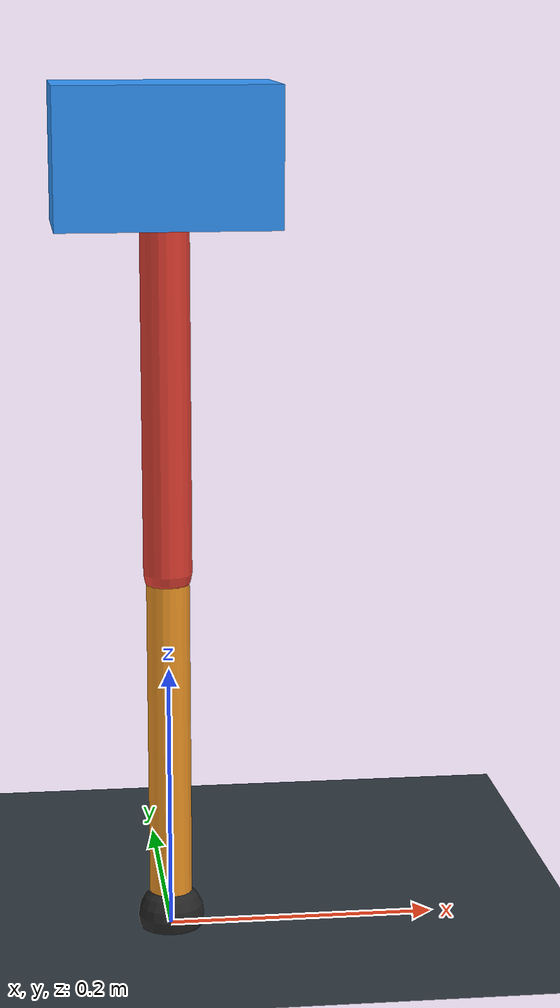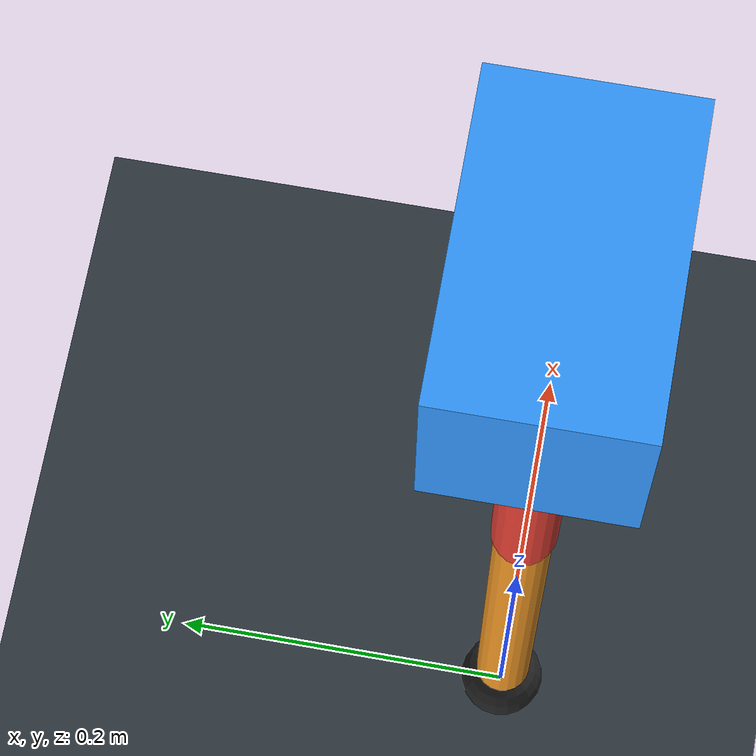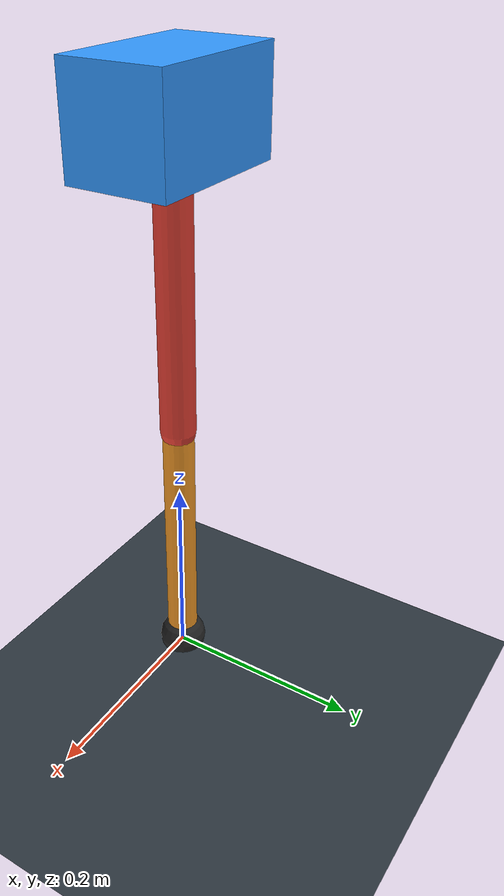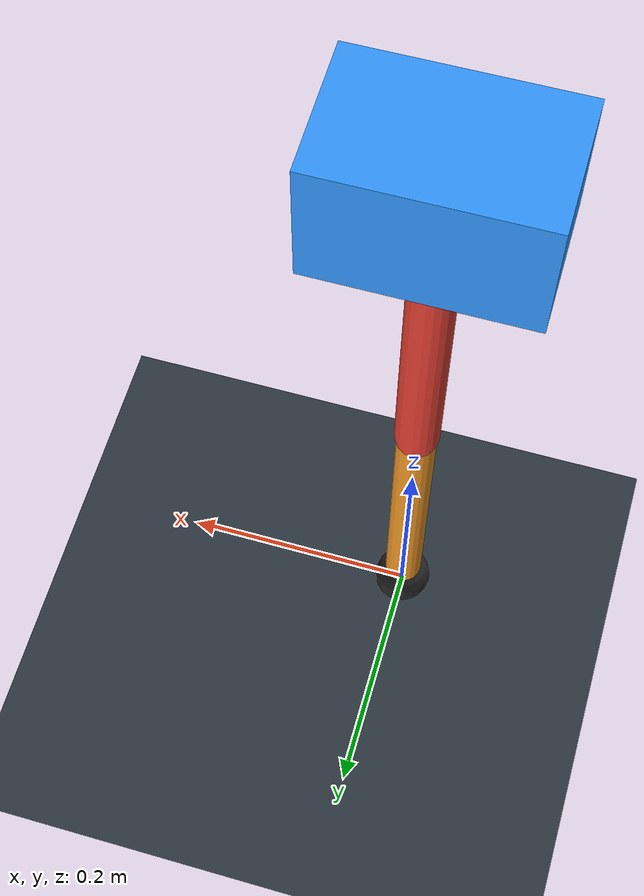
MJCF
<mujoco model="single_axis_two_bar">
  <compiler angle="radian" inertiafromgeom="true"/>
  <option timestep="0.001" integrator="implicitfast" gravity="0 0 -9.81"/>
  <default>
    <joint damping="0.08"/>
    <geom friction="1.2 0.01 0.0001" condim="3"/>
  </default>
  <worldbody>
    <geom name="floor" type="plane" size="5 5 0.1" rgba="0.18 0.22 0.25 1"/>
    <body name="carriage" pos="0 0 0.5786136396211237">
      <joint name="pole_slide" type="slide" axis="0 0 1"/>
      <geom name="payload" type="box" size="0.08 0.05 0.05" mass="3.3817326613822973" rgba="0.2 0.6 1 1"/>
      <body name="thigh" pos="0 0 0">
        <joint name="hip" type="hinge" axis="0 1 0"/>
        <geom name="thigh_link" type="capsule" fromto="0 0 0 0 0 -0.3050750647619598" size="0.018" mass="0.21737001485420998" rgba="0.9 0.25 0.2 1"/>
        <body name="shank" pos="0 0 -0.3050750647619598">
          <joint name="knee" type="hinge" axis="0 1 0"/>
          <geom name="shank_link" type="capsule" fromto="0 0 0 0 0 -0.2656606461876522" size="0.016" mass="0.1892867208044251" rgba="0.95 0.6 0.15 1"/>
          <geom name="foot" type="sphere" pos="0 0 -0.2656606461876522" size="0.025" mass="0.03" rgba="0.15 0.15 0.15 1"/>
          <site name="toe" pos="0 0 -0.2656606461876522" size="0.008"/>
        </body>
      </body>
    </body>
  </worldbody>
  <actuator>
    <motor name="hip_motor" joint="hip" ctrlrange="-30.511969681197773 30.511969681197773"/>
    <motor name="knee_motor" joint="knee" ctrlrange="-151.84565212090286 151.84565212090286"/>
  </actuator>
</mujoco>
